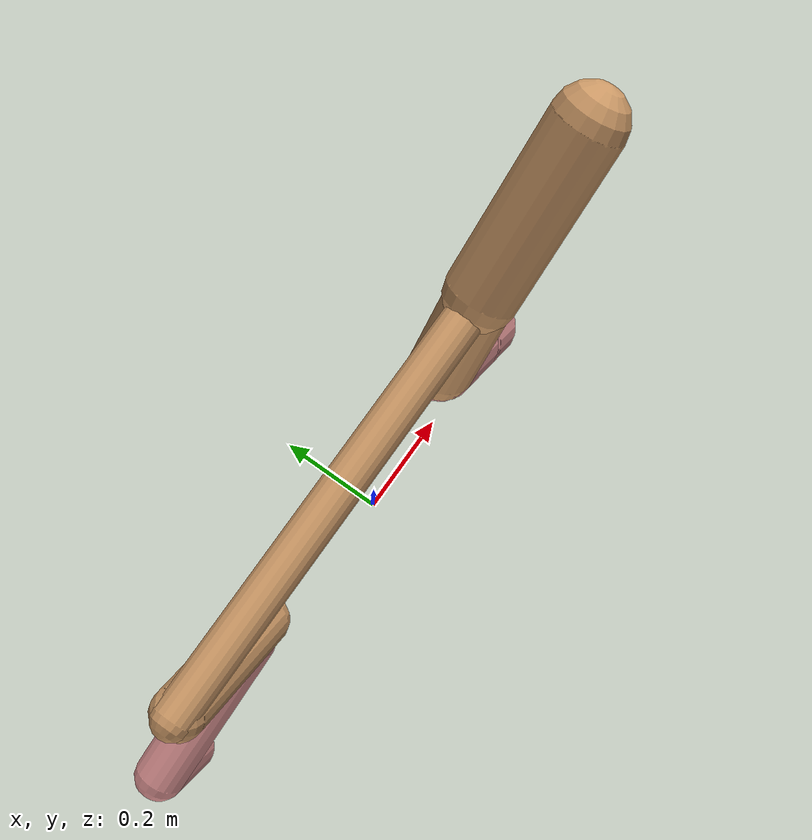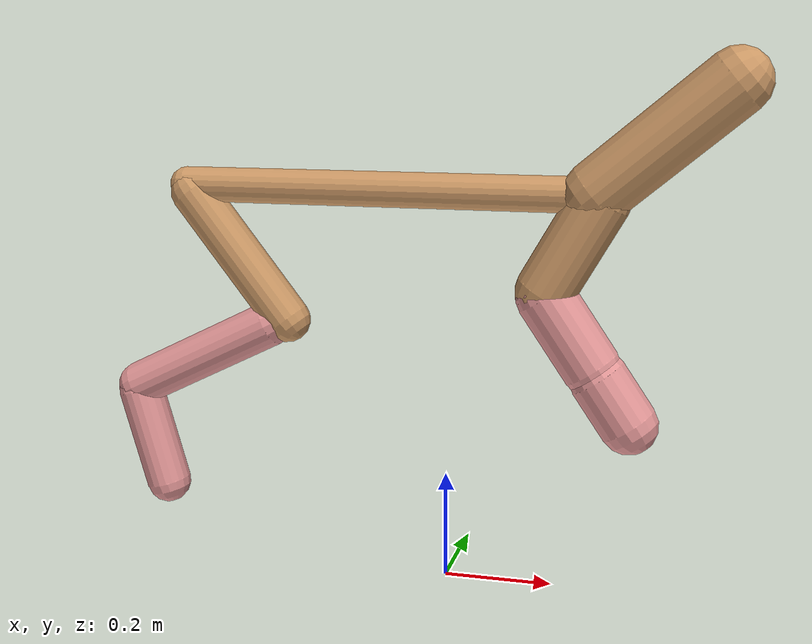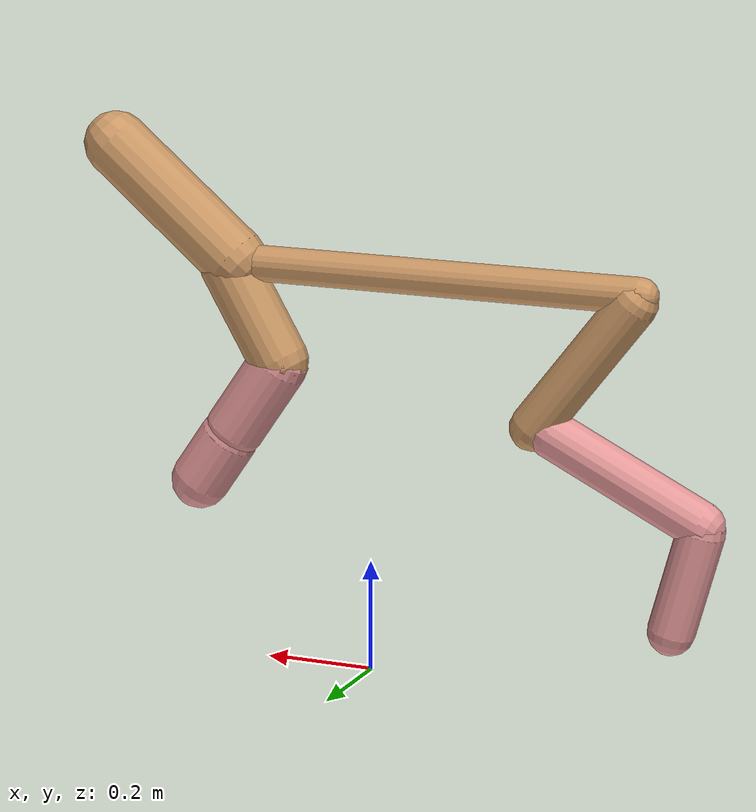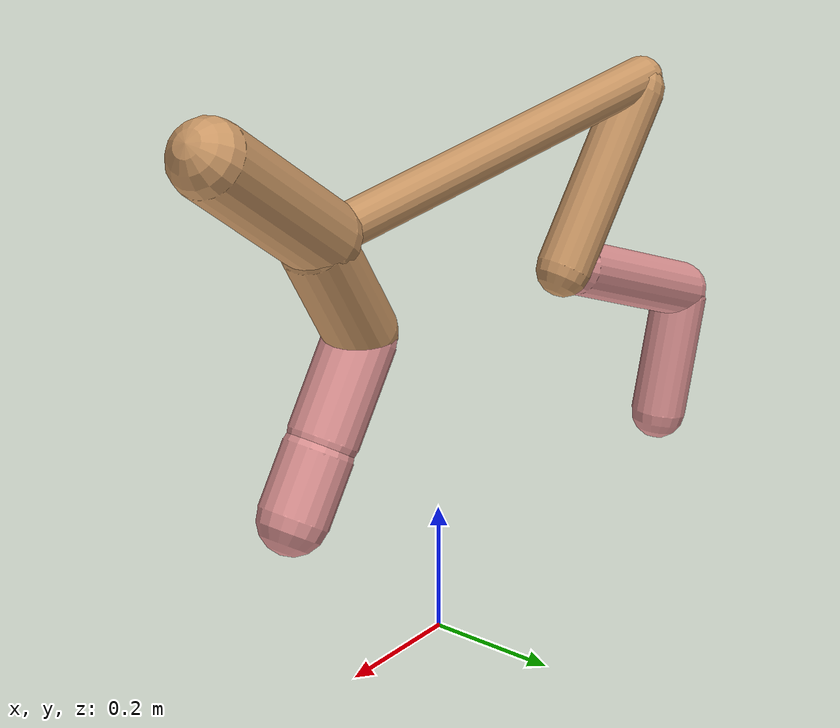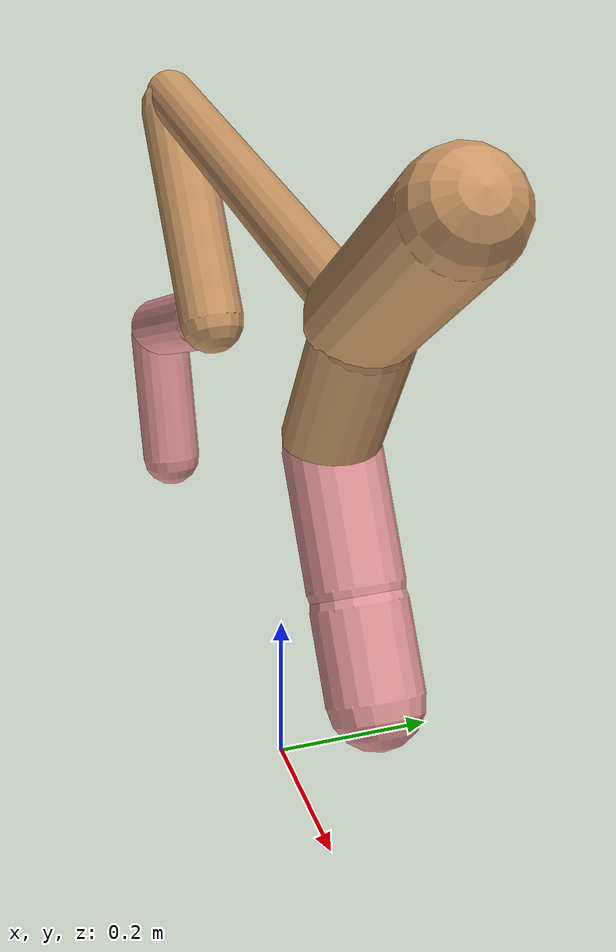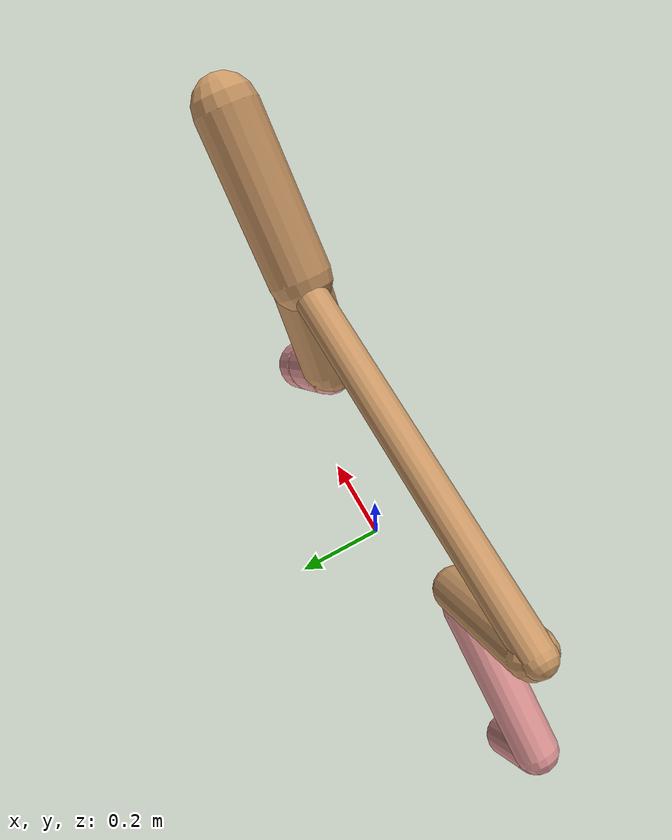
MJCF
<mujoco model="cheetah">
  <compiler angle="radian" coordinate="local" inertiafromgeom="true" settotalmass="14" />
  <default>
    <joint armature=".1" damping=".01" limited="true" solimplimit="0 .8 .03" solreflimit=".02 1" stiffness="8" />
    <geom conaffinity="0" condim="3" contype="1" friction="0.8 .1 .1" rgba="0.8 0.6 .4 1" solimp="0.0 0.8 0.01" solref="0.02 1" />
    <motor ctrllimited="true" ctrlrange="-1 1" />
  </default>
  <size nstack="300000" nuser_geom="1" />
  <option gravity="0 0 -9.81" timestep="0.01" />
  <worldbody>
    <body name="torso" pos="0.0 0.0 0.7284753630705182">
      <joint armature="0" axis="1 0 0" damping="0" limited="false" name="ignorex" pos="0 0 0" stiffness="0" type="slide" />
      <joint armature="0" axis="0 0 1" damping="0" limited="false" name="ignorez" pos="0 0 0" stiffness="0" type="slide" />
      <joint armature="0" axis="0 1 0" damping="0" limited="false" name="ignorey" pos="0 0 0" stiffness="0" type="hinge" />
      <geom fromto="-0.5 0.0 0.0 0.27747659648260947 0.0 0.0" name="torso" size="0.032521470834399234" type="capsule" />
      <geom axisangle="0 1 0 .87" name="head" pos="0.37747659648260945 0.0 0.1" size="0.058980579873968084 0.15" type="capsule" />

      <body name="bthigh" pos="-.5 0 0">
        <joint axis="0 1 0" damping="6" name="bthigh" pos="0 0 0" range="-.52 1.05" stiffness="240" type="hinge" />
        <geom axisangle="0 1 0 -3.8" name="bthigh" pos="0.10213343357293522 0.0 -0.1327734636448158" size="0.04270073577073932 0.14849909122476704" type="capsule" />
        <body name="bshin" pos="0.16426686714587044 0.0 -0.2555469272896316">
          <joint axis="0 1 0" damping="4.5" name="bshin" pos="0 0 0" range="-.785 .785" stiffness="180" type="hinge" />
          <geom axisangle="0 1 0 -2.03" name="bshin" pos="-0.14323760241574574 0.0 -0.07161880120787287" rgba="0.9 0.6 0.6 1" size="0.04270073577073932 0.15361974954286248" type="capsule" />
          <body name="bfoot" pos="-0.28647520483149147 0.0 -0.14323760241574574">
            <joint axis="0 1 0" damping="3" name="bfoot" pos="0 0 0" range="-.4 .785" stiffness="120" type="hinge" />
            <geom axisangle="0 1 0 -.27" name="bfoot" pos="0.030670236540538832 0.0 -0.09916709814774223" rgba="0.9 0.6 0.6 1" size="0.04270073577073932 0.09626837638019381" type="capsule" />
            <inertial mass="10" />
          </body>
        </body>
      </body>
      <body name="fthigh" pos="0.27747659648260947 0.0 0.0">
        <joint axis="0 1 0" damping="4.5" name="fthigh" pos="0 0 0" range="-1.5 0.8" stiffness="180" type="hinge" />
        <geom axisangle="0 1 0 .52" name="fthigh" pos="-0.05200501267439328 0.0 -0.08915145029895989" size="0.05376821594909427 0.09728652092687849" type="capsule" />
        <body name="fshin" pos="-0.10401002534878656 0.0 -0.17830290059791978">
          <joint axis="0 1 0" damping="3" name="fshin" pos="0 0 0" range="-1.2 1.1" stiffness="120" type="hinge" />
          <geom axisangle="0 1 0 -.6" name="fshin" pos="0.048334963217470175 0.0 -0.06692533368572792" rgba="0.9 0.6 0.6 1" size="0.05376821594909427 0.0775366257011212" type="capsule" />
          <body name="ffoot" pos="0.09666992643494035 0.0 -0.13385066737145584">
            <joint axis="0 1 0" damping="1.5" name="ffoot" pos="0 0 0" range="-3.1 -0.3" stiffness="60" type="hinge" />
            <geom axisangle="0 1 0 -.6" name="ffoot" pos="0.0348356131994704 0.0 -0.05418873164362063" rgba="0.9 0.6 0.6 1" size="0.05376821594909427 0.05120343206677816" type="capsule" />
            <inertial mass="10" />
          </body>
        </body>
      </body>
    </body>
  </worldbody>
  <actuator>
    <motor gear="120" joint="bthigh" name="bthigh" />
    <motor gear="90" joint="bshin" name="bshin" />
    <motor gear="60" joint="bfoot" name="bfoot" />
    <motor gear="120" joint="fthigh" name="fthigh" />
    <motor gear="60" joint="fshin" name="fshin" />
    <motor gear="30" joint="ffoot" name="ffoot" />
  </actuator>
</mujoco>
